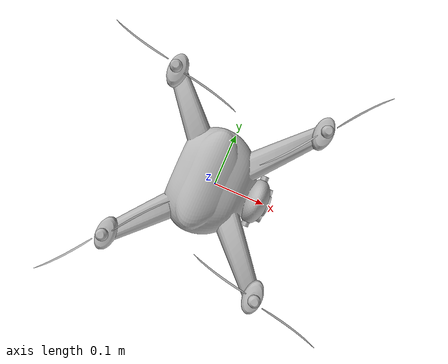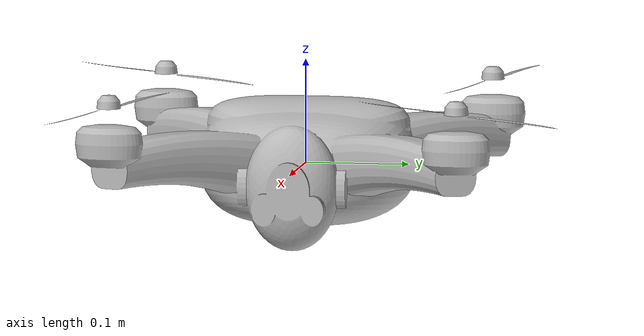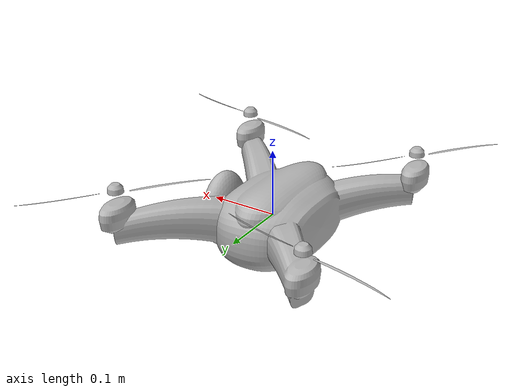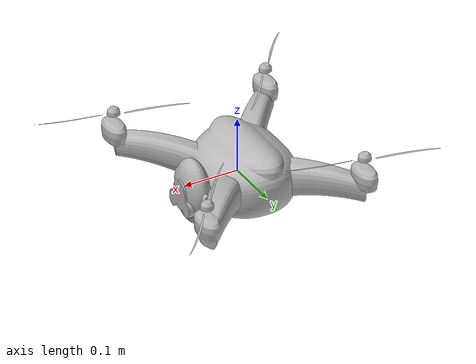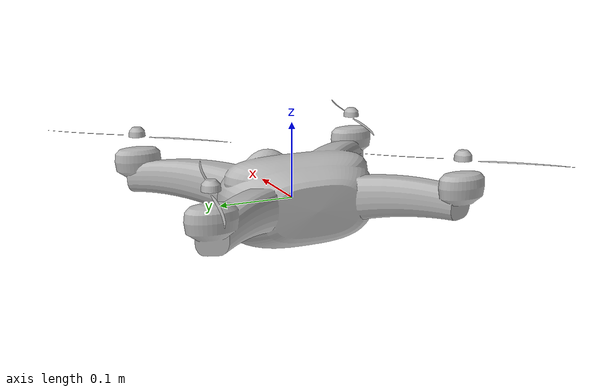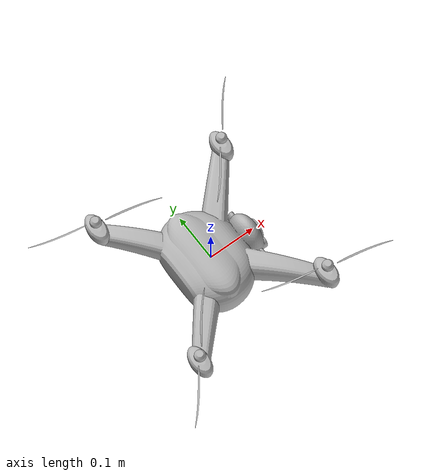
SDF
<?xml version="1.0" ?>
<sdf version="1.9">
  <model name="mavic4pro">
    <!-- 자동 생성: src/gazebo_export.py -->
    <!-- 메쉬: src/drone_cad.py (trimesh + manifold3d + shapely + scipy) -->
    <!-- 제원 출처: docs/drone_specs_2026.json (공식 DJI + 적대적 검증) -->
    <!-- ⚠ 질량 분포/관성텐서는 **메쉬에서 계산한 추정치**다. DJI 는 공개하지 않는다. -->
    <!--   총질량만 공식 TOW(1063 g)에 맞췄고, 분포는 부위별 밀도가 정했다. -->

    <link name="base_link">
      <pose>0 0 0 0 0 0</pose>
      <inertial>
        <mass>1.060267</mass>
        <pose>0.003492 -0.000005 0.007831 0 0 0</pose>
        <inertia>
          <ixx>0.00787400</ixx> <ixy>0.00000044</ixy> <ixz>0.00024408</ixz>
          <iyy>0.00675025</iyy> <iyz>-0.00000025</iyz> <izz>0.01316583</izz>
        </inertia>
      </inertial>
      <collision name="base_collision">
        <geometry><mesh><uri>model://mavic4pro/meshes/base_link_collision.stl</uri></mesh></geometry>
      </collision>
      <visual name="base_visual">
        <geometry><mesh><uri>model://mavic4pro/meshes/base_link.stl</uri></mesh></geometry>
      </visual>
    </link>

    <link name="rotor_0">
      <pose>0.146397 0.163218 0.066644 0 0 0.767945</pose>
      <inertial>
        <mass>0.000683</mass>
        <inertia>
          <ixx>0.0000000272</ixx> <ixy>0</ixy> <ixz>0</ixz>
          <iyy>0.0000001885</iyy> <iyz>0</iyz> <izz>0.0000002008</izz>
        </inertia>
      </inertial>
      <collision name="rotor_collision">
        <geometry><mesh><uri>model://mavic4pro/meshes/rotor_collision.stl</uri></mesh></geometry>
      </collision>
      <visual name="rotor_visual">
        <geometry><mesh><uri>model://mavic4pro/meshes/rotor.stl</uri></mesh></geometry>
      </visual>
    </link>
    <joint name="rotor_0_joint" type="revolute">
      <parent>base_link</parent>
      <child>rotor_0</child>
      <axis><xyz>0 0 1</xyz><limit><lower>-1e16</lower><upper>1e16</upper></limit></axis>
    </joint>
    <plugin filename="gz-sim-multicopter-motor-model-system" name="gz::sim::systems::MulticopterMotorModel">
      <jointName>rotor_0_joint</jointName>
      <linkName>rotor_0</linkName>
      <turningDirection>ccw</turningDirection>
      <timeConstantUp>0.0125</timeConstantUp>
      <timeConstantDown>0.025</timeConstantDown>
      <maxRotVelocity>628.32</maxRotVelocity>
      <motorConstant>1.833714e-05</motorConstant>
      <momentConstant>0.0160</momentConstant>
      <rotorDragCoefficient>8.064280e-05</rotorDragCoefficient>
      <rollingMomentCoefficient>1.0e-06</rollingMomentCoefficient>
      <rotorVelocitySlowdownSim>10</rotorVelocitySlowdownSim>
      <motorNumber>0</motorNumber>
      <commandSubTopic>command/motor_speed</commandSubTopic>
      <motorType>velocity</motorType>
    </plugin>

    <link name="rotor_1">
      <pose>-0.146397 0.163218 0.066644 0 0 2.792527</pose>
      <inertial>
        <mass>0.000683</mass>
        <inertia>
          <ixx>0.0000000272</ixx> <ixy>0</ixy> <ixz>0</ixz>
          <iyy>0.0000001885</iyy> <iyz>0</iyz> <izz>0.0000002008</izz>
        </inertia>
      </inertial>
      <collision name="rotor_collision">
        <geometry><mesh><uri>model://mavic4pro/meshes/rotor_collision.stl</uri></mesh></geometry>
      </collision>
      <visual name="rotor_visual">
        <geometry><mesh><uri>model://mavic4pro/meshes/rotor.stl</uri></mesh></geometry>
      </visual>
    </link>
    <joint name="rotor_1_joint" type="revolute">
      <parent>base_link</parent>
      <child>rotor_1</child>
      <axis><xyz>0 0 1</xyz><limit><lower>-1e16</lower><upper>1e16</upper></limit></axis>
    </joint>
    <plugin filename="gz-sim-multicopter-motor-model-system" name="gz::sim::systems::MulticopterMotorModel">
      <jointName>rotor_1_joint</jointName>
      <linkName>rotor_1</linkName>
      <turningDirection>cw</turningDirection>
      <timeConstantUp>0.0125</timeConstantUp>
      <timeConstantDown>0.025</timeConstantDown>
      <maxRotVelocity>628.32</maxRotVelocity>
      <motorConstant>1.833714e-05</motorConstant>
      <momentConstant>0.0160</momentConstant>
      <rotorDragCoefficient>8.064280e-05</rotorDragCoefficient>
      <rollingMomentCoefficient>1.0e-06</rollingMomentCoefficient>
      <rotorVelocitySlowdownSim>10</rotorVelocitySlowdownSim>
      <motorNumber>1</motorNumber>
      <commandSubTopic>command/motor_speed</commandSubTopic>
      <motorType>velocity</motorType>
    </plugin>

    <link name="rotor_2">
      <pose>-0.146397 -0.163218 0.066644 0 0 3.909538</pose>
      <inertial>
        <mass>0.000683</mass>
        <inertia>
          <ixx>0.0000000272</ixx> <ixy>0</ixy> <ixz>0</ixz>
          <iyy>0.0000001885</iyy> <iyz>0</iyz> <izz>0.0000002008</izz>
        </inertia>
      </inertial>
      <collision name="rotor_collision">
        <geometry><mesh><uri>model://mavic4pro/meshes/rotor_collision.stl</uri></mesh></geometry>
      </collision>
      <visual name="rotor_visual">
        <geometry><mesh><uri>model://mavic4pro/meshes/rotor.stl</uri></mesh></geometry>
      </visual>
    </link>
    <joint name="rotor_2_joint" type="revolute">
      <parent>base_link</parent>
      <child>rotor_2</child>
      <axis><xyz>0 0 1</xyz><limit><lower>-1e16</lower><upper>1e16</upper></limit></axis>
    </joint>
    <plugin filename="gz-sim-multicopter-motor-model-system" name="gz::sim::systems::MulticopterMotorModel">
      <jointName>rotor_2_joint</jointName>
      <linkName>rotor_2</linkName>
      <turningDirection>ccw</turningDirection>
      <timeConstantUp>0.0125</timeConstantUp>
      <timeConstantDown>0.025</timeConstantDown>
      <maxRotVelocity>628.32</maxRotVelocity>
      <motorConstant>1.833714e-05</motorConstant>
      <momentConstant>0.0160</momentConstant>
      <rotorDragCoefficient>8.064280e-05</rotorDragCoefficient>
      <rollingMomentCoefficient>1.0e-06</rollingMomentCoefficient>
      <rotorVelocitySlowdownSim>10</rotorVelocitySlowdownSim>
      <motorNumber>2</motorNumber>
      <commandSubTopic>command/motor_speed</commandSubTopic>
      <motorType>velocity</motorType>
    </plugin>

    <link name="rotor_3">
      <pose>0.146397 -0.163218 0.066644 0 0 5.934119</pose>
      <inertial>
        <mass>0.000683</mass>
        <inertia>
          <ixx>0.0000000272</ixx> <ixy>0</ixy> <ixz>0</ixz>
          <iyy>0.0000001885</iyy> <iyz>0</iyz> <izz>0.0000002008</izz>
        </inertia>
      </inertial>
      <collision name="rotor_collision">
        <geometry><mesh><uri>model://mavic4pro/meshes/rotor_collision.stl</uri></mesh></geometry>
      </collision>
      <visual name="rotor_visual">
        <geometry><mesh><uri>model://mavic4pro/meshes/rotor.stl</uri></mesh></geometry>
      </visual>
    </link>
    <joint name="rotor_3_joint" type="revolute">
      <parent>base_link</parent>
      <child>rotor_3</child>
      <axis><xyz>0 0 1</xyz><limit><lower>-1e16</lower><upper>1e16</upper></limit></axis>
    </joint>
    <plugin filename="gz-sim-multicopter-motor-model-system" name="gz::sim::systems::MulticopterMotorModel">
      <jointName>rotor_3_joint</jointName>
      <linkName>rotor_3</linkName>
      <turningDirection>cw</turningDirection>
      <timeConstantUp>0.0125</timeConstantUp>
      <timeConstantDown>0.025</timeConstantDown>
      <maxRotVelocity>628.32</maxRotVelocity>
      <motorConstant>1.833714e-05</motorConstant>
      <momentConstant>0.0160</momentConstant>
      <rotorDragCoefficient>8.064280e-05</rotorDragCoefficient>
      <rollingMomentCoefficient>1.0e-06</rollingMomentCoefficient>
      <rotorVelocitySlowdownSim>10</rotorVelocitySlowdownSim>
      <motorNumber>3</motorNumber>
      <commandSubTopic>command/motor_speed</commandSubTopic>
      <motorType>velocity</motorType>
    </plugin>

  </model>
</sdf>
